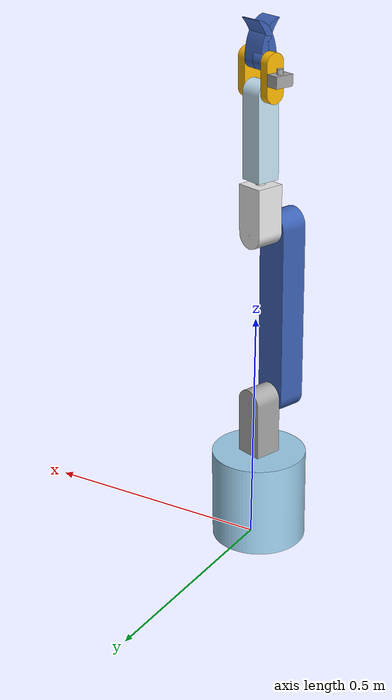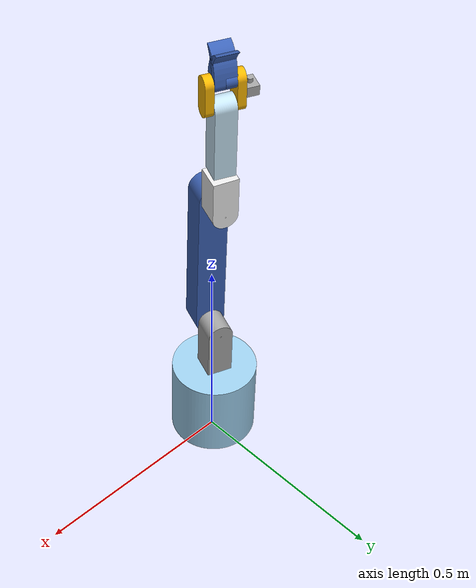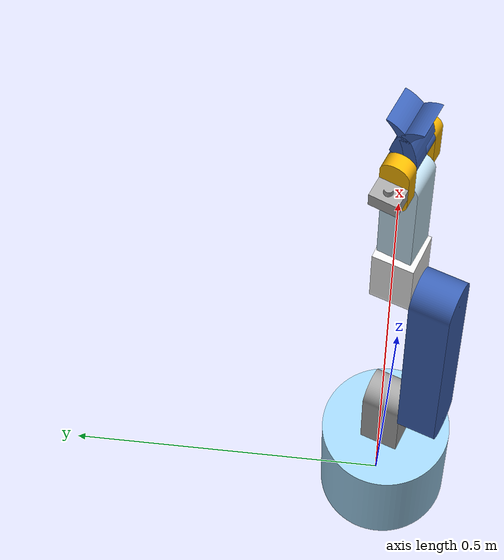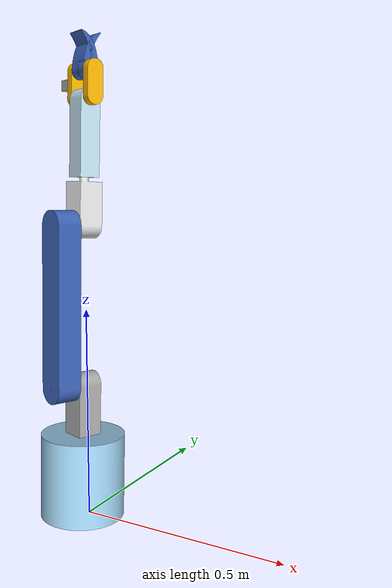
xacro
<?xml version="1.0"?>
<robot name="GS_arm"  xmlns:xacro= "http://www.ros.org/wiki/xacro">

<xacro:include filename="robot.urdf.xacro"/>

<xacro:include filename="GS_arm_ros2_control.xacro"/>

<xacro:include filename="GS_arm_gazebo.xacro"/>

<xacro:include filename="GS_arm_controller.xacro"/>

</robot>

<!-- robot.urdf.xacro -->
<robot name="GS_arm"  xmlns:xacro= "http://www.ros.org/wiki/xacro">
<link name="part_1">
<visual>
<origin xyz="-0.060927708237049842122 -0.052691274899339758664 0.20156976042617563705" rpy="-2.9631100051819361241 -1.5407888913564720124 1.394061644504385411" />
<geometry>
<mesh filename="file://$(find arm_description_pkg)/meshes_upright_xacro_copy/part_1.stl"/>
</geometry>
<material name="part_1_material">
<color rgba="0.61568627450980395466 0.81176470588235294379 0.92941176470588238168 1.0"/>
</material>
</visual>
<collision>
<origin xyz="-0.060927708237049842122 -0.052691274899339758664 0.20156976042617563705" rpy="-2.9631100051819361241 -1.5407888913564720124 1.394061644504385411" />
<geometry>
<mesh filename="file://$(find arm_description_pkg)/meshes_upright_xacro_copy/part_1.stl"/>
</geometry>
</collision>
<inertial>
<origin xyz="-0.012847522887695316668 -0.0066732064490245754373 0.099911201869236826445" rpy="0 0 0"/>
<mass value="16.964600307575601335" />
<inertia ixx="0.098959774997045238387" ixy="-2.2025719327034745502e-06"  ixz="-7.4539945780455307942e-05" iyy="0.098947835809840067878" iyz="-0.0004173614096246176363" izz="0.084835727584359019171" />
</inertial>
</link>

<link name="part_2">
<visual>
<origin xyz="0.021859453325366338949 0.029950000000000004396 -0.078906147183415098478" rpy="-3.8136941904646244285e-18 1.1018081836170486041e-18 4.0369051518943095821e-17" />
<geometry>
<mesh filename="file://$(find arm_description_pkg)/meshes_upright_xacro_copy/part_2.stl"/>
</geometry>
<material name="part_2_material">
<color rgba="0.64705882352941179736 0.64705882352941179736 0.64705882352941179736 1.0"/>
</material>
</visual>
<collision>
<origin xyz="0.021859453325366338949 0.029950000000000004396 -0.078906147183415098478" rpy="-3.8136941904646244285e-18 1.1018081836170486041e-18 4.0369051518943095821e-17" />
<geometry>
<mesh filename="file://$(find arm_description_pkg)/meshes_upright_xacro_copy/part_2.stl"/>
</geometry>
</collision>
<inertial>
<origin xyz="1.0408340855860842566e-17 9.4895590264717814503e-18 -0.07188221736803815376" rpy="0 0 0"/>
<mass value="1.3915067639780405173" />
<inertia ixx="0.002835108489056042437" ixy="7.6547797194094097414e-20"  ixz="-3.0733288929599345139e-21" iyy="0.0028198264538930933529" iyz="-1.4979667029165425889e-20" izz="0.00081684132887385957691" />
</inertial>
</link>

<link name="arm_l2">
<visual>
<origin xyz="0.02185945332536633201 0.041093852816584897081 6.9388939039072283776e-18" rpy="-1.570796326794896558 -2.8838828068861858972e-17 -3.7995633174731490981e-21" />
<geometry>
<mesh filename="file://$(find arm_description_pkg)/meshes_upright_xacro_copy/part_3.stl"/>
</geometry>
<material name="part_3_material">
<color rgba="0.2313725490196078538 0.38039215686274507888 0.7058823529411765163 1.0"/>
</material>
</visual>
<collision>
<origin xyz="0.02185945332536633201 0.041093852816584897081 6.9388939039072283776e-18" rpy="-1.570796326794896558 -2.8838828068861858972e-17 -3.7995633174731490981e-21" />
<geometry>
<mesh filename="file://$(find arm_description_pkg)/meshes_upright_xacro_copy/part_3.stl"/>
</geometry>
</collision>
<inertial>
<origin xyz="-5.2041704279304212832e-17 -0.18856516774135861914 -0.029999999999999988481" rpy="0 0 0"/>
<mass value="4.8969791668034456933" />
<inertia ixx="0.07789305039887263471" ixy="7.6815604240601638054e-21"  ixz="2.5197414421764389535e-19" iyy="0.0034061657007043782616" iyz="-3.0377355432664468629e-19" izz="0.078361028599494952918" />
</inertial>
</link>

<link name="part_4">
<visual>
<origin xyz="0.021859453325366449972 0.41818975281658488097 -0.05999999999999999778" rpy="-1.570796326794896558 2.0919095607392774711e-17 -4.023844240725233285e-20" />
<geometry>
<mesh filename="file://$(find arm_description_pkg)/meshes_upright_xacro_copy/part_4.stl"/>
</geometry>
<material name="part_4_material">
<color rgba="0.91764705882352937127 0.91764705882352937127 0.91764705882352937127 1.0"/>
</material>
</visual>
<collision>
<origin xyz="0.021859453325366449972 0.41818975281658488097 -0.05999999999999999778" rpy="-1.570796326794896558 2.0919095607392774711e-17 -4.023844240725233285e-20" />
<geometry>
<mesh filename="file://$(find arm_description_pkg)/meshes_upright_xacro_copy/part_4.stl"/>
</geometry>
</collision>
<inertial>
<origin xyz="1.3877787807814456755e-17 -0.038761553489476463508 -0.02999999999999999889" rpy="0 0 0"/>
<mass value="1.2125859904168174719" />
<inertia ixx="0.0019678986638406604365" ixy="-6.5411722665744431305e-22"  ixz="-1.0129183013805729147e-19" iyy="0.00070607701719875223811" iyz="5.0386197014901340675e-21" izz="0.0019510648950391592908" />
</inertial>
</link>

<link name="part_5">
<visual>
<origin xyz="0.021859453325366422216 0.029999999999999981543 0.52862962749099551285" rpy="7.0516498298126753781e-20 -2.0715378740743802656e-18 -2.852493874835358935e-17" />
<geometry>
<mesh filename="file://$(find arm_description_pkg)/meshes_upright_xacro_copy/part_5.stl"/>
</geometry>
<material name="part_5_material">
<color rgba="0.76862745098039220171 0.88627450980392152857 0.95294117647058818044 1.0"/>
</material>
</visual>
<collision>
<origin xyz="0.021859453325366422216 0.029999999999999981543 0.52862962749099551285" rpy="7.0516498298126753781e-20 -2.0715378740743802656e-18 -2.852493874835358935e-17" />
<geometry>
<mesh filename="file://$(find arm_description_pkg)/meshes_upright_xacro_copy/part_5.stl"/>
</geometry>
</collision>
<inertial>
<origin xyz="0 -7.8315741853087340853e-18 -0.09736541375549745414" rpy="0 0 0"/>
<mass value="1.3132780137257631381" />
<inertia ixx="0.0044307946624084146303" ixy="-1.9029305377070382391e-19"  ixz="8.8146128070755164122e-21" iyy="0.0044375919100398336994" iyz="-1.3732363777497407206e-21" izz="0.00054040192475431438925" />
</inertial>
</link>

<link name="arm_endvec">
<visual>
<origin xyz="-0.014241423967343893806 0.057870514689954744014 0.070000000000000492384" rpy="1.57079632679489678 3.4756851864160179075e-15 -3.141592653589793116" />
<geometry>
<mesh filename="file://$(find arm_description_pkg)/meshes_upright_xacro_copy/part_6.stl"/>
</geometry>
<material name="part_6_material">
<color rgba="0.98039215686274505668 0.71372549019607844922 0.0039215686274509803377 1.0"/>
</material>
</visual>
<collision>
<origin xyz="-0.014241423967343893806 0.057870514689954744014 0.070000000000000492384" rpy="1.57079632679489678 3.4756851864160179075e-15 -3.141592653589793116" />
<geometry>
<mesh filename="file://$(find arm_description_pkg)/meshes_upright_xacro_copy/part_6.stl"/>
</geometry>
</collision>
<visual>
<origin xyz="0.014241423967343755028 0.057870514689953855836 -0.019999999999999996947" rpy="-1.570796326794896558 -2.0925879772107132736e-17 -3.7679410954358343815e-19" />
<geometry>
<mesh filename="file://$(find arm_description_pkg)/meshes_upright_xacro_copy/part_6.stl"/>
</geometry>
<material name="part_6_material">
<color rgba="0.98039215686274505668 0.71372549019607844922 0.0039215686274509803377 1.0"/>
</material>
</visual>
<collision>
<origin xyz="0.014241423967343755028 0.057870514689953855836 -0.019999999999999996947" rpy="-1.570796326794896558 -2.0925879772107132736e-17 -3.7679410954358343815e-19" />
<geometry>
<mesh filename="file://$(find arm_description_pkg)/meshes_upright_xacro_copy/part_6.stl"/>
</geometry>
</collision>
<inertial>
<origin xyz="3.4694469519536141888e-18 0.029999803475387887275 0.02500000000000023731" rpy="0 0 0"/>
<mass value="0.39491421562297401859" />
<inertia ixx="0.00077952976843925097551" ixy="4.5884102952215507076e-21"  ixz="4.2236458494905675916e-19" iyy="0.00054506697439382417389" iyz="-3.911921061051984354e-18" izz="0.0003307261543751899768" />
</inertial>
</link>

<link name="part_7">
<visual>
<origin xyz="-0.04950666523738102287 -0.042907676028204999596 -5.2041704279304212832e-18" rpy="1.570796326794896558 -3.0374349789013968302e-17 2.3796085423396105074e-18" />
<geometry>
<mesh filename="file://$(find arm_description_pkg)/meshes_upright_xacro_copy/part_7.stl"/>
</geometry>
<material name="part_7_material">
<color rgba="0.2313725490196078538 0.38039215686274507888 0.7058823529411765163 1.0"/>
</material>
</visual>
<collision>
<origin xyz="-0.04950666523738102287 -0.042907676028204999596 -5.2041704279304212832e-18" rpy="1.570796326794896558 -3.0374349789013968302e-17 2.3796085423396105074e-18" />
<geometry>
<mesh filename="file://$(find arm_description_pkg)/meshes_upright_xacro_copy/part_7.stl"/>
</geometry>
</collision>
<inertial>
<origin xyz="0.011428349163519750664 0.025956774880904937702 -0.020055851983822137879" rpy="0 0 0"/>
<mass value="0.21898152454735828054" />
<inertia ixx="0.00019317328735416925637" ixy="-3.8397938817018630595e-05"  ixz="1.1908899038261129804e-05" iyy="6.9774445075418726429e-05" iyz="2.7997084155377971736e-05" izz="0.00018241138593703111145" />
</inertial>
</link>

<joint name="joint61" type="revolute">
<origin xyz="2.6020852139652106416e-17 0.060000000000000719425 0.050000000000000384415" rpy="-1.3051110654553270891e-16 -3.6219364250219852517e-15 0.0017453292519943278561" />
<parent link="arm_endvec" />
<child link="part_7" />
<axis xyz="0 0 1"/>
<limit effort="1" velocity="20" lower="0.0017453292519943295908" upper="0.785398163397448279"/>
<joint_properties friction="0.0"/>
</joint>

<link name="part_7_2">
<visual>
<origin xyz="-0.04950666523738102287 -0.042907676028204999596 6.9388939039072283776e-18" rpy="1.570796326794896558 1.8501085185038758137e-17 -6.6847455854739985999e-20" />
<geometry>
<mesh filename="file://$(find arm_description_pkg)/meshes_upright_xacro_copy/part_7.stl"/>
</geometry>
<material name="part_7_material">
<color rgba="0.2313725490196078538 0.38039215686274507888 0.7058823529411765163 1.0"/>
</material>
</visual>
<collision>
<origin xyz="-0.04950666523738102287 -0.042907676028204999596 6.9388939039072283776e-18" rpy="1.570796326794896558 1.8501085185038758137e-17 -6.6847455854739985999e-20" />
<geometry>
<mesh filename="file://$(find arm_description_pkg)/meshes_upright_xacro_copy/part_7.stl"/>
</geometry>
</collision>
<inertial>
<origin xyz="0.011428349163519750664 0.025956774880904920355 -0.020055851983822130941" rpy="0 0 0"/>
<mass value="0.21898152454735828054" />
<inertia ixx="0.00019317328735416925637" ixy="-3.8397938817018623819e-05"  ixz="1.1908899038261133192e-05" iyy="6.9774445075418699324e-05" iyz="2.7997084155377971736e-05" izz="0.00018241138593703116566" />
</inertial>
</link>

<joint name="joint62" type="revolute">
<origin xyz="-1.3877787807814456755e-17 0.060000000000000275335 0" rpy="3.141592653589793116 1.4940655869454076051e-16 3.139847324337798895" />
<parent link="arm_endvec" />
<child link="part_7_2" />
<axis xyz="0 0 1"/>
<limit effort="1" velocity="20" lower="0.0017453292519943295908" upper="0.785398163397448279"/>
<joint_properties friction="0.0"/>
</joint>

<link name="part_8">
<visual>
<origin xyz="0.014241423967343753293 0.03965491285093092344 -6.9388939039072283776e-18" rpy="-1.570796326794896558 2.375950485847349993e-17 -3.0439687886675930484e-18" />
<geometry>
<mesh filename="file://$(find arm_description_pkg)/meshes_upright_xacro_copy/part_8.stl"/>
</geometry>
<material name="part_8_material">
<color rgba="0.64705882352941179736 0.64705882352941179736 0.64705882352941179736 1.0"/>
</material>
</visual>
<collision>
<origin xyz="0.014241423967343753293 0.03965491285093092344 -6.9388939039072283776e-18" rpy="-1.570796326794896558 2.375950485847349993e-17 -3.0439687886675930484e-18" />
<geometry>
<mesh filename="file://$(find arm_description_pkg)/meshes_upright_xacro_copy/part_8.stl"/>
</geometry>
</collision>
<inertial>
<origin xyz="0 0.00074786934381090158785 -0.014000000000000008965" rpy="0 0 0"/>
<mass value="0.074595837543526194446" />
<inertia ixx="8.9105752039101485649e-06" ixy="-6.3515107007304618735e-23"  ixz="-6.408889536985664186e-23" iyy="1.4224500290208064247e-05" iyz="2.8448714580750982866e-23" izz="1.3757073929186295309e-05" />
</inertial>
</link>

<joint name="camJoint" type="fixed">
<origin xyz="5.2041704279304212832e-18 0.030000000000000026645 -0.020000000000000003886" rpy="-8.407770089078547878e-17 1.3260212660776882526e-14 -3.499192533420253676e-18" />
<parent link="arm_endvec" />
<child link="part_8" />
<axis xyz="0 0 1"/>
<limit effort="1" velocity="20" />
<joint_properties friction="0.0"/>
</joint>

<joint name="joint5" type="revolute">
<origin xyz="0.024999999999999994449 3.4694469519536141888e-18 -0.18025709999999994793" rpy="-1.570796326794896558 0.0023657410482258202367 1.5707963267949027752" />
<parent link="part_5" />
<child link="arm_endvec" />
<axis xyz="0 0 1"/>
<limit effort="1" velocity="20" lower="-0.785398163397448279" upper="0.785398163397448279"/>
<joint_properties friction="0.0"/>
</joint>

<joint name="joint4" type="revolute">
<origin xyz="2.0816681711721685133e-17 -0.11043987467441074291 -0.029999999999999991951" rpy="-1.5707963267948961139 0.055022509796948490535 2.0321820926615991798e-15" />
<parent link="part_4" />
<child link="part_5" />
<axis xyz="0 0 1"/>
<limit effort="1" velocity="20" lower="-6.283185307179586232" upper="6.283185307179586232"/>
<joint_properties friction="0.0"/>
</joint>

<joint name="joint3" type="revolute">
<origin xyz="-1.1709383462843447887e-16 -0.37709589999999987286 6.9388939039072283776e-18" rpy="-3.1415926535897926719 1.8776256651363799443e-15 -3.1304169072356646808" />
<parent link="arm_l2" />
<child link="part_4" />
<axis xyz="0 0 1"/>
<limit effort="1" velocity="20" lower="-1.7453292519943295336" upper="1.7453292519943295336"/>
<joint_properties friction="0.0"/>
</joint>

<joint name="joint2" type="revolute">
<origin xyz="1.2143064331837649661e-17 0.029950000000000004396 -0.12000000000000005107" rpy="1.570796326794896558 0.0055101428498300960429 1.3862304601146284723e-14" />
<parent link="part_2" />
<child link="arm_l2" />
<axis xyz="0 0 1"/>
<limit effort="1" velocity="20" lower="-2.0943951023931952626" upper="2.0943951023931952626"/>
<joint_properties friction="0.0"/>
</joint>

<joint name="joint1" type="revolute">
<origin xyz="-0.012320023146518720158 -0.0037196486854706237168 0.19986618281054607804" rpy="3.1120129525764470557 -0.0050492480293522880655 -0.34575578779666443774" />
<parent link="part_1" />
<child link="part_2" />
<axis xyz="0 0 1"/>
<limit effort="1" velocity="20" lower="-3.141592653589793116" upper="3.141592653589793116"/>
<joint_properties friction="0.0"/>
</joint>
<link name ="cam_link_oriented">
</link>

<joint name="camJoint_oriented" type="fixed">
    <origin xyz="0 -0.001 -0.01" rpy="3.1415 -0.15 1.57"/>
    <parent link="part_8" />
    <child link="cam_link_oriented" />
</joint>

<link name="world"/>

<joint name="joint0" type="fixed">
<parent link="world"/>
<child link="part_1"/>
</joint>

</robot>
